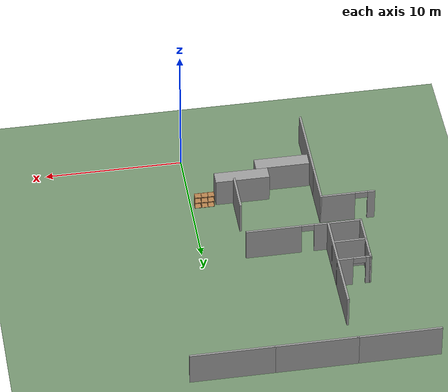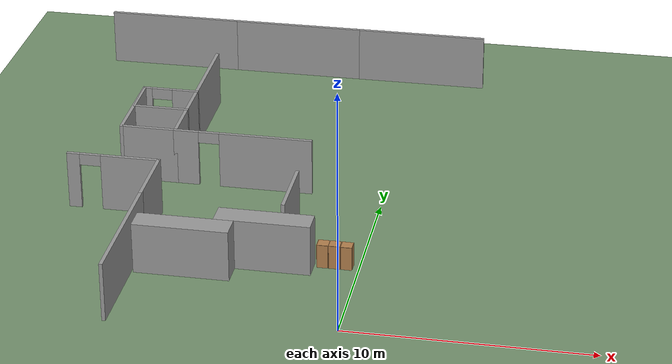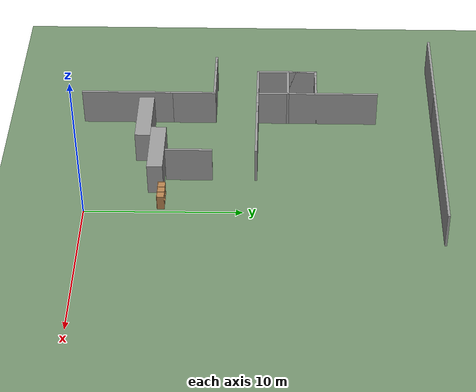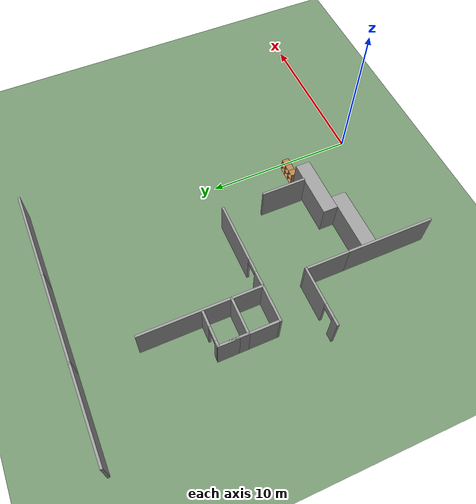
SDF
<sdf version="1.7">
 <world name="default">
  <model name="ground_plane">
   <static>1</static>
   <link name="link">
    <collision name="collision">
     <geometry><plane><normal>0 0 1</normal><size>600 600</size></plane></geometry>
     <surface>
      <contact><collide_bitmask>65535</collide_bitmask></contact>
      <friction><ode><mu>100</mu><mu2>50</mu2></ode></friction>
     </surface>
    </collision>
    <visual name="visual">
     <cast_shadows>0</cast_shadows>
     <geometry><plane><normal>0 0 1</normal><size>100 100</size></plane></geometry>
     <material><ambient>0.45 0.57 0.43 1</ambient><diffuse>0.45 0.57 0.43 1</diffuse></material>
    </visual>
   </link>
  </model>
  <model name="unit_box_clone_clone">
   <pose>-3.79139 4.41905 1.08892 0 0.000118 -0.002216</pose>
   <link name="link">
    <inertial>
     <mass>1</mass>
     <inertia>
      <ixx>0.166667</ixx>
      <ixy>0</ixy>
      <ixz>0</ixz>
      <iyy>0.166667</iyy>
      <iyz>0</iyz>
      <izz>0.166667</izz>
     </inertia>
    </inertial>
    <collision name="collision"><geometry><box><size>3.92499 1 2.1783</size></box></geometry></collision>
    <visual name="visual">
     <geometry><box><size>3.92499 1 2.1783</size></box></geometry>
     <material>
      <script><name>Gazebo/Grey</name><uri>file://media/materials/scripts/gazebo.material</uri></script>
     </material>
    </visual>
   </link>
  </model>
  <model name="unit_box_clone_clone_clone">
   <pose>-6.88429 3.42566 1.08892 0 -0.000118 -0.002201</pose>
   <link name="link">
    <inertial>
     <mass>1</mass>
     <inertia>
      <ixx>0.166667</ixx>
      <ixy>0</ixy>
      <ixz>0</ixz>
      <iyy>0.166667</iyy>
      <iyz>0</iyz>
      <izz>0.166667</izz>
     </inertia>
    </inertial>
    <collision name="collision"><geometry><box><size>3.92499 1 2.1783</size></box></geometry></collision>
    <visual name="visual">
     <geometry><box><size>3.92499 1 2.1783</size></box></geometry>
     <material>
      <script><name>Gazebo/Grey</name><uri>file://media/materials/scripts/gazebo.material</uri></script>
     </material>
    </visual>
   </link>
  </model>
  <model name="myhal_V3_2">
   <link name="Wall_336">
    <pose>0 20.325 0 0 -0 3.14159</pose>
    <visual name="Wall_336_Visual">
     <pose>0 0 1.25 0 -0 0</pose>
     <geometry><box><size>6 0.15 2.5</size></box></geometry>
     <material>
      <script><uri>file://media/materials/scripts/gazebo.material</uri><name>Gazebo/Grey</name></script>
      <ambient>1 1 1 1</ambient>
      <shader type="pixel"/>
     </material>
     <meta><layer>0</layer></meta>
    </visual>
    <collision name="Wall_336_Collision">
     <pose>0 0 1.25 0 -0 0</pose>
     <geometry><box><size>6 0.15 2.5</size></box></geometry>
     <surface>
      <friction>
       <ode><mu>1</mu><mu2>1</mu2><fdir1>0 0 0</fdir1><slip1>0</slip1><slip2>0</slip2></ode>
       <torsional>
        <coefficient>1</coefficient>
        <patch_radius>0</patch_radius>
        <surface_radius>0</surface_radius>
        <use_patch_radius>1</use_patch_radius>
        <ode><slip>0</slip></ode>
       </torsional>
      </friction>
      <bounce><restitution_coefficient>0</restitution_coefficient><threshold>1e+06</threshold></bounce>
      <contact>
       <collide_without_contact>0</collide_without_contact>
       <collide_without_contact_bitmask>1</collide_without_contact_bitmask>
       <collide_bitmask>1</collide_bitmask>
       <ode>
        <soft_cfm>0</soft_cfm>
        <soft_erp>0.2</soft_erp>
        <kp>1e+13</kp>
        <kd>1</kd>
        <max_vel>0.01</max_vel>
        <min_depth>0</min_depth>
       </ode>
       <bullet>
        <split_impulse>1</split_impulse>
        <split_impulse_penetration_threshold>-0.01</split_impulse_penetration_threshold>
        <soft_cfm>0</soft_cfm>
        <soft_erp>0.2</soft_erp>
        <kp>1e+13</kp>
        <kd>1</kd>
       </bullet>
      </contact>
     </surface>
    </collision>
   </link>
   <link name="Wall_337">
    <pose>-5.85 20.325 0 0 -0 3.14159</pose>
    <visual name="Wall_337_Visual">
     <pose>0 0 1.25 0 -0 0</pose>
     <geometry><box><size>6 0.15 2.5</size></box></geometry>
     <material>
      <script><uri>file://media/materials/scripts/gazebo.material</uri><name>Gazebo/Grey</name></script>
      <ambient>1 1 1 1</ambient>
      <shader type="pixel"/>
     </material>
     <meta><layer>0</layer></meta>
    </visual>
    <collision name="Wall_337_Collision">
     <pose>0 0 1.25 0 -0 0</pose>
     <geometry><box><size>6 0.15 2.5</size></box></geometry>
     <surface>
      <friction>
       <ode><mu>1</mu><mu2>1</mu2><fdir1>0 0 0</fdir1><slip1>0</slip1><slip2>0</slip2></ode>
       <torsional>
        <coefficient>1</coefficient>
        <patch_radius>0</patch_radius>
        <surface_radius>0</surface_radius>
        <use_patch_radius>1</use_patch_radius>
        <ode><slip>0</slip></ode>
       </torsional>
      </friction>
      <bounce><restitution_coefficient>0</restitution_coefficient><threshold>1e+06</threshold></bounce>
      <contact>
       <collide_without_contact>0</collide_without_contact>
       <collide_without_contact_bitmask>1</collide_without_contact_bitmask>
       <collide_bitmask>1</collide_bitmask>
       <ode>
        <soft_cfm>0</soft_cfm>
        <soft_erp>0.2</soft_erp>
        <kp>1e+13</kp>
        <kd>1</kd>
        <max_vel>0.01</max_vel>
        <min_depth>0</min_depth>
       </ode>
       <bullet>
        <split_impulse>1</split_impulse>
        <split_impulse_penetration_threshold>-0.01</split_impulse_penetration_threshold>
        <soft_cfm>0</soft_cfm>
        <soft_erp>0.2</soft_erp>
        <kp>1e+13</kp>
        <kd>1</kd>
       </bullet>
      </contact>
     </surface>
    </collision>
   </link>
   <link name="Wall_338">
    <pose>-11.7 20.325 0 0 -0 3.14159</pose>
    <visual name="Wall_338_Visual">
     <pose>0 0 1.25 0 -0 0</pose>
     <geometry><box><size>6 0.15 2.5</size></box></geometry>
     <material>
      <script><uri>file://media/materials/scripts/gazebo.material</uri><name>Gazebo/Grey</name></script>
      <ambient>1 1 1 1</ambient>
      <shader type="pixel"/>
     </material>
     <meta><layer>0</layer></meta>
    </visual>
    <collision name="Wall_338_Collision">
     <pose>0 0 1.25 0 -0 0</pose>
     <geometry><box><size>6 0.15 2.5</size></box></geometry>
     <surface>
      <friction>
       <ode><mu>1</mu><mu2>1</mu2><fdir1>0 0 0</fdir1><slip1>0</slip1><slip2>0</slip2></ode>
       <torsional>
        <coefficient>1</coefficient>
        <patch_radius>0</patch_radius>
        <surface_radius>0</surface_radius>
        <use_patch_radius>1</use_patch_radius>
        <ode><slip>0</slip></ode>
       </torsional>
      </friction>
      <bounce><restitution_coefficient>0</restitution_coefficient><threshold>1e+06</threshold></bounce>
      <contact>
       <collide_without_contact>0</collide_without_contact>
       <collide_without_contact_bitmask>1</collide_without_contact_bitmask>
       <collide_bitmask>1</collide_bitmask>
       <ode>
        <soft_cfm>0</soft_cfm>
        <soft_erp>0.2</soft_erp>
        <kp>1e+13</kp>
        <kd>1</kd>
        <max_vel>0.01</max_vel>
        <min_depth>0</min_depth>
       </ode>
       <bullet>
        <split_impulse>1</split_impulse>
        <split_impulse_penetration_threshold>-0.01</split_impulse_penetration_threshold>
        <soft_cfm>0</soft_cfm>
        <soft_erp>0.2</soft_erp>
        <kp>1e+13</kp>
        <kd>1</kd>
       </bullet>
      </contact>
     </surface>
    </collision>
   </link>
   <link name="Wall_362">
    <pose>-8.775 12.55 0 0 0 -1.5708</pose>
    <visual name="Wall_362_Visual">
     <pose>0 0 1.25 0 -0 0</pose>
     <geometry><box><size>8 0.15 2.5</size></box></geometry>
     <material>
      <script><uri>file://media/materials/scripts/gazebo.material</uri><name>Gazebo/Grey</name></script>
      <ambient>1 1 1 1</ambient>
      <shader type="pixel"/>
     </material>
     <meta><layer>0</layer></meta>
    </visual>
    <collision name="Wall_362_Collision">
     <pose>0 0 1.25 0 -0 0</pose>
     <geometry><box><size>8 0.15 2.5</size></box></geometry>
     <surface>
      <friction>
       <ode><mu>1</mu><mu2>1</mu2><fdir1>0 0 0</fdir1><slip1>0</slip1><slip2>0</slip2></ode>
       <torsional>
        <coefficient>1</coefficient>
        <patch_radius>0</patch_radius>
        <surface_radius>0</surface_radius>
        <use_patch_radius>1</use_patch_radius>
        <ode><slip>0</slip></ode>
       </torsional>
      </friction>
      <bounce><restitution_coefficient>0</restitution_coefficient><threshold>1e+06</threshold></bounce>
      <contact>
       <collide_without_contact>0</collide_without_contact>
       <collide_without_contact_bitmask>1</collide_without_contact_bitmask>
       <collide_bitmask>1</collide_bitmask>
       <ode>
        <soft_cfm>0</soft_cfm>
        <soft_erp>0.2</soft_erp>
        <kp>1e+13</kp>
        <kd>1</kd>
        <max_vel>0.01</max_vel>
        <min_depth>0</min_depth>
       </ode>
       <bullet>
        <split_impulse>1</split_impulse>
        <split_impulse_penetration_threshold>-0.01</split_impulse_penetration_threshold>
        <soft_cfm>0</soft_cfm>
        <soft_erp>0.2</soft_erp>
        <kp>1e+13</kp>
        <kd>1</kd>
       </bullet>
      </contact>
     </surface>
    </collision>
   </link>
   <link name="Wall_366">
    <pose>-9.95 8.625 0 0 -0 3.14159</pose>
    <visual name="Wall_366_Visual">
     <pose>0 0 1.25 0 -0 0</pose>
     <geometry><box><size>2.5 0.15 2.5</size></box></geometry>
     <material>
      <script><uri>file://media/materials/scripts/gazebo.material</uri><name>Gazebo/Grey</name></script>
      <ambient>1 1 1 1</ambient>
      <shader type="pixel"/>
     </material>
     <meta><layer>0</layer></meta>
    </visual>
    <collision name="Wall_366_Collision">
     <pose>0 0 1.25 0 -0 0</pose>
     <geometry><box><size>2.5 0.15 2.5</size></box></geometry>
     <surface>
      <friction>
       <ode><mu>1</mu><mu2>1</mu2><fdir1>0 0 0</fdir1><slip1>0</slip1><slip2>0</slip2></ode>
       <torsional>
        <coefficient>1</coefficient>
        <patch_radius>0</patch_radius>
        <surface_radius>0</surface_radius>
        <use_patch_radius>1</use_patch_radius>
        <ode><slip>0</slip></ode>
       </torsional>
      </friction>
      <bounce><restitution_coefficient>0</restitution_coefficient><threshold>1e+06</threshold></bounce>
      <contact>
       <collide_without_contact>0</collide_without_contact>
       <collide_without_contact_bitmask>1</collide_without_contact_bitmask>
       <collide_bitmask>1</collide_bitmask>
       <ode>
        <soft_cfm>0</soft_cfm>
        <soft_erp>0.2</soft_erp>
        <kp>1e+13</kp>
        <kd>1</kd>
        <max_vel>0.01</max_vel>
        <min_depth>0</min_depth>
       </ode>
       <bullet>
        <split_impulse>1</split_impulse>
        <split_impulse_penetration_threshold>-0.01</split_impulse_penetration_threshold>
        <soft_cfm>0</soft_cfm>
        <soft_erp>0.2</soft_erp>
        <kp>1e+13</kp>
        <kd>1</kd>
       </bullet>
      </contact>
     </surface>
    </collision>
   </link>
   <link name="Wall_367">
    <pose>-11.125 10.55 0 0 -0 1.5708</pose>
    <visual name="Wall_367_Visual">
     <pose>0 0 1.25 0 -0 0</pose>
     <geometry><box><size>4 0.15 2.5</size></box></geometry>
     <material>
      <script><uri>file://media/materials/scripts/gazebo.material</uri><name>Gazebo/Grey</name></script>
      <ambient>1 1 1 1</ambient>
      <shader type="pixel"/>
     </material>
     <meta><layer>0</layer></meta>
    </visual>
    <collision name="Wall_367_Collision">
     <pose>0 0 1.25 0 -0 0</pose>
     <geometry><box><size>4 0.15 2.5</size></box></geometry>
     <surface>
      <friction>
       <ode><mu>1</mu><mu2>1</mu2><fdir1>0 0 0</fdir1><slip1>0</slip1><slip2>0</slip2></ode>
       <torsional>
        <coefficient>1</coefficient>
        <patch_radius>0</patch_radius>
        <surface_radius>0</surface_radius>
        <use_patch_radius>1</use_patch_radius>
        <ode><slip>0</slip></ode>
       </torsional>
      </friction>
      <bounce><restitution_coefficient>0</restitution_coefficient><threshold>1e+06</threshold></bounce>
      <contact>
       <collide_without_contact>0</collide_without_contact>
       <collide_without_contact_bitmask>1</collide_without_contact_bitmask>
       <collide_bitmask>1</collide_bitmask>
       <ode>
        <soft_cfm>0</soft_cfm>
        <soft_erp>0.2</soft_erp>
        <kp>1e+13</kp>
        <kd>1</kd>
        <max_vel>0.01</max_vel>
        <min_depth>0</min_depth>
       </ode>
       <bullet>
        <split_impulse>1</split_impulse>
        <split_impulse_penetration_threshold>-0.01</split_impulse_penetration_threshold>
        <soft_cfm>0</soft_cfm>
        <soft_erp>0.2</soft_erp>
        <kp>1e+13</kp>
        <kd>1</kd>
       </bullet>
      </contact>
     </surface>
    </collision>
   </link>
   <link name="Wall_368">
    <pose>-9.95 12.475 0 0 -0 0</pose>
    <visual name="Wall_368_Visual_0">
     <pose>-1.03753 0 1.25 0 -0 0</pose>
     <geometry><box><size>0.424942 0.15 2.5</size></box></geometry>
     <material>
      <script><uri>file://media/materials/scripts/gazebo.material</uri><name>Gazebo/Grey</name></script>
      <ambient>1 1 1 1</ambient>
      <shader type="pixel"/>
     </material>
     <meta><layer>0</layer></meta>
    </visual>
    <visual name="Wall_368_Visual_1">
     <pose>0.662471 0 1.25 0 -0 0</pose>
     <geometry><box><size>1.17506 0.15 2.5</size></box></geometry>
     <material>
      <script><uri>file://media/materials/scripts/gazebo.material</uri><name>Gazebo/Grey</name></script>
      <ambient>1 1 1 1</ambient>
      <shader type="pixel"/>
     </material>
     <meta><layer>0</layer></meta>
    </visual>
    <visual name="Wall_368_Visual_2">
     <pose>-0.375058 0 2.25 0 -0 0</pose>
     <geometry><box><size>0.9 0.15 0.5</size></box></geometry>
     <material>
      <script><uri>file://media/materials/scripts/gazebo.material</uri><name>Gazebo/Grey</name></script>
      <ambient>1 1 1 1</ambient>
      <shader type="pixel"/>
     </material>
     <meta><layer>0</layer></meta>
    </visual>
    <collision name="Wall_368_Collision_0">
     <pose>-1.03753 0 1.25 0 -0 0</pose>
     <geometry><box><size>0.424942 0.15 2.5</size></box></geometry>
     <surface>
      <friction>
       <ode><mu>1</mu><mu2>1</mu2><fdir1>0 0 0</fdir1><slip1>0</slip1><slip2>0</slip2></ode>
       <torsional>
        <coefficient>1</coefficient>
        <patch_radius>0</patch_radius>
        <surface_radius>0</surface_radius>
        <use_patch_radius>1</use_patch_radius>
        <ode><slip>0</slip></ode>
       </torsional>
      </friction>
      <bounce><restitution_coefficient>0</restitution_coefficient><threshold>1e+06</threshold></bounce>
      <contact>
       <collide_without_contact>0</collide_without_contact>
       <collide_without_contact_bitmask>1</collide_without_contact_bitmask>
       <collide_bitmask>1</collide_bitmask>
       <ode>
        <soft_cfm>0</soft_cfm>
        <soft_erp>0.2</soft_erp>
        <kp>1e+13</kp>
        <kd>1</kd>
        <max_vel>0.01</max_vel>
        <min_depth>0</min_depth>
       </ode>
       <bullet>
        <split_impulse>1</split_impulse>
        <split_impulse_penetration_threshold>-0.01</split_impulse_penetration_threshold>
        <soft_cfm>0</soft_cfm>
        <soft_erp>0.2</soft_erp>
        <kp>1e+13</kp>
        <kd>1</kd>
       </bullet>
      </contact>
     </surface>
    </collision>
    <collision name="Wall_368_Collision_1">
     <pose>0.662471 0 1.25 0 -0 0</pose>
     <geometry><box><size>1.17506 0.15 2.5</size></box></geometry>
     <surface>
      <friction>
       <ode><mu>1</mu><mu2>1</mu2><fdir1>0 0 0</fdir1><slip1>0</slip1><slip2>0</slip2></ode>
       <torsional>
        <coefficient>1</coefficient>
        <patch_radius>0</patch_radius>
        <surface_radius>0</surface_radius>
        <use_patch_radius>1</use_patch_radius>
        <ode><slip>0</slip></ode>
       </torsional>
      </friction>
      <bounce><restitution_coefficient>0</restitution_coefficient><threshold>1e+06</threshold></bounce>
      <contact>
       <collide_without_contact>0</collide_without_contact>
       <collide_without_contact_bitmask>1</collide_without_contact_bitmask>
       <collide_bitmask>1</collide_bitmask>
       <ode>
        <soft_cfm>0</soft_cfm>
        <soft_erp>0.2</soft_erp>
        <kp>1e+13</kp>
        <kd>1</kd>
        <max_vel>0.01</max_vel>
        <min_depth>0</min_depth>
       </ode>
       <bullet>
        <split_impulse>1</split_impulse>
        <split_impulse_penetration_threshold>-0.01</split_impulse_penetration_threshold>
        <soft_cfm>0</soft_cfm>
        <soft_erp>0.2</soft_erp>
        <kp>1e+13</kp>
        <kd>1</kd>
       </bullet>
      </contact>
     </surface>
    </collision>
    <collision name="Wall_368_Collision_2">
     <pose>-0.375058 0 2.25 0 -0 0</pose>
     <geometry><box><size>0.9 0.15 0.5</size></box></geometry>
     <surface>
      <friction>
       <ode><mu>1</mu><mu2>1</mu2><fdir1>0 0 0</fdir1><slip1>0</slip1><slip2>0</slip2></ode>
       <torsional>
        <coefficient>1</coefficient>
        <patch_radius>0</patch_radius>
        <surface_radius>0</surface_radius>
        <use_patch_radius>1</use_patch_radius>
        <ode><slip>0</slip></ode>
       </torsional>
      </friction>
      <bounce><restitution_coefficient>0</restitution_coefficient><threshold>1e+06</threshold></bounce>
      <contact>
       <collide_without_contact>0</collide_without_contact>
       <collide_without_contact_bitmask>1</collide_without_contact_bitmask>
       <collide_bitmask>1</collide_bitmask>
       <ode>
        <soft_cfm>0</soft_cfm>
        <soft_erp>0.2</soft_erp>
        <kp>1e+13</kp>
        <kd>1</kd>
        <max_vel>0.01</max_vel>
        <min_depth>0</min_depth>
       </ode>
       <bullet>
        <split_impulse>1</split_impulse>
        <split_impulse_penetration_threshold>-0.01</split_impulse_penetration_threshold>
        <soft_cfm>0</soft_cfm>
        <soft_erp>0.2</soft_erp>
        <kp>1e+13</kp>
        <kd>1</kd>
       </bullet>
      </contact>
     </surface>
    </collision>
   </link>
   <link name="Wall_370">
    <pose>-5.85 8.625 0 0 -0 0</pose>
    <visual name="Wall_370_Visual_0">
     <pose>-2.45569 0 1.25 0 -0 0</pose>
     <geometry><box><size>1.08861 0.15 2.5</size></box></geometry>
     <material>
      <script><uri>file://media/materials/scripts/gazebo.material</uri><name>Gazebo/Grey</name></script>
      <ambient>1 1 1 1</ambient>
      <shader type="pixel"/>
     </material>
     <meta><layer>0</layer></meta>
    </visual>
    <visual name="Wall_370_Visual_1">
     <pose>0.994306 0 1.25 0 -0 0</pose>
     <geometry><box><size>4.01139 0.15 2.5</size></box></geometry>
     <material>
      <script><uri>file://media/materials/scripts/gazebo.material</uri><name>Gazebo/Grey</name></script>
      <ambient>1 1 1 1</ambient>
      <shader type="pixel"/>
     </material>
     <meta><layer>0</layer></meta>
    </visual>
    <visual name="Wall_370_Visual_2">
     <pose>-1.46139 0 2.25 0 -0 0</pose>
     <geometry><box><size>0.9 0.15 0.5</size></box></geometry>
     <material>
      <script><uri>file://media/materials/scripts/gazebo.material</uri><name>Gazebo/Grey</name></script>
      <ambient>1 1 1 1</ambient>
      <shader type="pixel"/>
     </material>
     <meta><layer>0</layer></meta>
    </visual>
    <collision name="Wall_370_Collision_0">
     <pose>-2.45569 0 1.25 0 -0 0</pose>
     <geometry><box><size>1.08861 0.15 2.5</size></box></geometry>
     <surface>
      <friction>
       <ode><mu>1</mu><mu2>1</mu2><fdir1>0 0 0</fdir1><slip1>0</slip1><slip2>0</slip2></ode>
       <torsional>
        <coefficient>1</coefficient>
        <patch_radius>0</patch_radius>
        <surface_radius>0</surface_radius>
        <use_patch_radius>1</use_patch_radius>
        <ode><slip>0</slip></ode>
       </torsional>
      </friction>
      <bounce><restitution_coefficient>0</restitution_coefficient><threshold>1e+06</threshold></bounce>
      <contact>
       <collide_without_contact>0</collide_without_contact>
       <collide_without_contact_bitmask>1</collide_without_contact_bitmask>
       <collide_bitmask>1</collide_bitmask>
       <ode>
        <soft_cfm>0</soft_cfm>
        <soft_erp>0.2</soft_erp>
        <kp>1e+13</kp>
        <kd>1</kd>
        <max_vel>0.01</max_vel>
        <min_depth>0</min_depth>
       </ode>
       <bullet>
        <split_impulse>1</split_impulse>
        <split_impulse_penetration_threshold>-0.01</split_impulse_penetration_threshold>
        <soft_cfm>0</soft_cfm>
        <soft_erp>0.2</soft_erp>
        <kp>1e+13</kp>
        <kd>1</kd>
       </bullet>
      </contact>
     </surface>
    </collision>
    <collision name="Wall_370_Collision_1">
     <pose>0.994306 0 1.25 0 -0 0</pose>
     <geometry><box><size>4.01139 0.15 2.5</size></box></geometry>
     <surface>
      <friction>
       <ode><mu>1</mu><mu2>1</mu2><fdir1>0 0 0</fdir1><slip1>0</slip1><slip2>0</slip2></ode>
       <torsional>
        <coefficient>1</coefficient>
        <patch_radius>0</patch_radius>
        <surface_radius>0</surface_radius>
        <use_patch_radius>1</use_patch_radius>
        <ode><slip>0</slip></ode>
       </torsional>
      </friction>
      <bounce><restitution_coefficient>0</restitution_coefficient><threshold>1e+06</threshold></bounce>
      <contact>
       <collide_without_contact>0</collide_without_contact>
       <collide_without_contact_bitmask>1</collide_without_contact_bitmask>
       <collide_bitmask>1</collide_bitmask>
       <ode>
        <soft_cfm>0</soft_cfm>
        <soft_erp>0.2</soft_erp>
        <kp>1e+13</kp>
        <kd>1</kd>
        <max_vel>0.01</max_vel>
        <min_depth>0</min_depth>
       </ode>
       <bullet>
        <split_impulse>1</split_impulse>
        <split_impulse_penetration_threshold>-0.01</split_impulse_penetration_threshold>
        <soft_cfm>0</soft_cfm>
        <soft_erp>0.2</soft_erp>
        <kp>1e+13</kp>
        <kd>1</kd>
       </bullet>
      </contact>
     </surface>
    </collision>
    <collision name="Wall_370_Collision_2">
     <pose>-1.46139 0 2.25 0 -0 0</pose>
     <geometry><box><size>0.9 0.15 0.5</size></box></geometry>
     <surface>
      <friction>
       <ode><mu>1</mu><mu2>1</mu2><fdir1>0 0 0</fdir1><slip1>0</slip1><slip2>0</slip2></ode>
       <torsional>
        <coefficient>1</coefficient>
        <patch_radius>0</patch_radius>
        <surface_radius>0</surface_radius>
        <use_patch_radius>1</use_patch_radius>
        <ode><slip>0</slip></ode>
       </torsional>
      </friction>
      <bounce><restitution_coefficient>0</restitution_coefficient><threshold>1e+06</threshold></bounce>
      <contact>
       <collide_without_contact>0</collide_without_contact>
       <collide_without_contact_bitmask>1</collide_without_contact_bitmask>
       <collide_bitmask>1</collide_bitmask>
       <ode>
        <soft_cfm>0</soft_cfm>
        <soft_erp>0.2</soft_erp>
        <kp>1e+13</kp>
        <kd>1</kd>
        <max_vel>0.01</max_vel>
        <min_depth>0</min_depth>
       </ode>
       <bullet>
        <split_impulse>1</split_impulse>
        <split_impulse_penetration_threshold>-0.01</split_impulse_penetration_threshold>
        <soft_cfm>0</soft_cfm>
        <soft_erp>0.2</soft_erp>
        <kp>1e+13</kp>
        <kd>1</kd>
       </bullet>
      </contact>
     </surface>
    </collision>
   </link>
   <link name="Wall_439">
    <pose>-10.7 5.775 0 0 -0 3.14159</pose>
    <visual name="Wall_439_Visual_0">
     <pose>-0.724975 0 1.25 0 -0 0</pose>
     <geometry><box><size>2.55005 0.15 2.5</size></box></geometry>
     <material>
      <script><uri>file://media/materials/scripts/gazebo.material</uri><name>Gazebo/Grey</name></script>
      <ambient>1 1 1 1</ambient>
      <shader type="pixel"/>
     </material>
     <meta><layer>0</layer></meta>
    </visual>
    <visual name="Wall_439_Visual_1">
     <pose>1.72503 0 1.25 0 -0 0</pose>
     <geometry><box><size>0.549949 0.15 2.5</size></box></geometry>
     <material>
      <script><uri>file://media/materials/scripts/gazebo.material</uri><name>Gazebo/Grey</name></script>
      <ambient>1 1 1 1</ambient>
      <shader type="pixel"/>
     </material>
     <meta><layer>0</layer></meta>
    </visual>
    <visual name="Wall_439_Visual_2">
     <pose>1.00005 0 2.25 0 -0 0</pose>
     <geometry><box><size>0.9 0.15 0.5</size></box></geometry>
     <material>
      <script><uri>file://media/materials/scripts/gazebo.material</uri><name>Gazebo/Grey</name></script>
      <ambient>1 1 1 1</ambient>
      <shader type="pixel"/>
     </material>
     <meta><layer>0</layer></meta>
    </visual>
    <collision name="Wall_439_Collision_0">
     <pose>-0.724975 0 1.25 0 -0 0</pose>
     <geometry><box><size>2.55005 0.15 2.5</size></box></geometry>
     <surface>
      <friction>
       <ode><mu>1</mu><mu2>1</mu2><fdir1>0 0 0</fdir1><slip1>0</slip1><slip2>0</slip2></ode>
       <torsional>
        <coefficient>1</coefficient>
        <patch_radius>0</patch_radius>
        <surface_radius>0</surface_radius>
        <use_patch_radius>1</use_patch_radius>
        <ode><slip>0</slip></ode>
       </torsional>
      </friction>
      <bounce><restitution_coefficient>0</restitution_coefficient><threshold>1e+06</threshold></bounce>
      <contact>
       <collide_without_contact>0</collide_without_contact>
       <collide_without_contact_bitmask>1</collide_without_contact_bitmask>
       <collide_bitmask>1</collide_bitmask>
       <ode>
        <soft_cfm>0</soft_cfm>
        <soft_erp>0.2</soft_erp>
        <kp>1e+13</kp>
        <kd>1</kd>
        <max_vel>0.01</max_vel>
        <min_depth>0</min_depth>
       </ode>
       <bullet>
        <split_impulse>1</split_impulse>
        <split_impulse_penetration_threshold>-0.01</split_impulse_penetration_threshold>
        <soft_cfm>0</soft_cfm>
        <soft_erp>0.2</soft_erp>
        <kp>1e+13</kp>
        <kd>1</kd>
       </bullet>
      </contact>
     </surface>
    </collision>
    <collision name="Wall_439_Collision_2">
     <pose>1.00005 0 2.25 0 -0 0</pose>
     <geometry><box><size>0.9 0.15 0.5</size></box></geometry>
     <surface>
      <friction>
       <ode><mu>1</mu><mu2>1</mu2><fdir1>0 0 0</fdir1><slip1>0</slip1><slip2>0</slip2></ode>
       <torsional>
        <coefficient>1</coefficient>
        <patch_radius>0</patch_radius>
        <surface_radius>0</surface_radius>
        <use_patch_radius>1</use_patch_radius>
        <ode><slip>0</slip></ode>
       </torsional>
      </friction>
      <bounce><restitution_coefficient>0</restitution_coefficient><threshold>1e+06</threshold></bounce>
      <contact>
       <collide_without_contact>0</collide_without_contact>
       <collide_without_contact_bitmask>1</collide_without_contact_bitmask>
       <collide_bitmask>1</collide_bitmask>
       <ode>
        <soft_cfm>0</soft_cfm>
        <soft_erp>0.2</soft_erp>
        <kp>1e+13</kp>
        <kd>1</kd>
        <max_vel>0.01</max_vel>
        <min_depth>0</min_depth>
       </ode>
       <bullet>
        <split_impulse>1</split_impulse>
        <split_impulse_penetration_threshold>-0.01</split_impulse_penetration_threshold>
        <soft_cfm>0</soft_cfm>
        <soft_erp>0.2</soft_erp>
        <kp>1e+13</kp>
        <kd>1</kd>
       </bullet>
      </contact>
     </surface>
    </collision>
    <collision name="Wall_439_Collision_1">
     <pose>1.72503 0 1.25 0 -0 0</pose>
     <geometry><box><size>0.549949 0.15 2.5</size></box></geometry>
     <surface>
      <friction>
       <ode><mu>1</mu><mu2>1</mu2><fdir1>0 0 0</fdir1><slip1>0</slip1><slip2>0</slip2></ode>
       <torsional>
        <coefficient>1</coefficient>
        <patch_radius>0</patch_radius>
        <surface_radius>0</surface_radius>
        <use_patch_radius>1</use_patch_radius>
        <ode><slip>0</slip></ode>
       </torsional>
      </friction>
      <bounce><restitution_coefficient>0</restitution_coefficient><threshold>1e+06</threshold></bounce>
      <contact>
       <collide_without_contact>0</collide_without_contact>
       <collide_without_contact_bitmask>1</collide_without_contact_bitmask>
       <collide_bitmask>1</collide_bitmask>
       <ode>
        <soft_cfm>0</soft_cfm>
        <soft_erp>0.2</soft_erp>
        <kp>1e+13</kp>
        <kd>1</kd>
        <max_vel>0.01</max_vel>
        <min_depth>0</min_depth>
       </ode>
       <bullet>
        <split_impulse>1</split_impulse>
        <split_impulse_penetration_threshold>-0.01</split_impulse_penetration_threshold>
        <soft_cfm>0</soft_cfm>
        <soft_erp>0.2</soft_erp>
        <kp>1e+13</kp>
        <kd>1</kd>
       </bullet>
      </contact>
     </surface>
    </collision>
   </link>
   <link name="Wall_447">
    <pose>-8.775 4.35 0 0 0 -1.5708</pose>
    <visual name="Wall_447_Visual">
     <pose>0 0 1.25 0 -0 0</pose>
     <geometry><box><size>3 0.15 2.5</size></box></geometry>
     <material>
      <script><uri>file://media/materials/scripts/gazebo.material</uri><name>Gazebo/Grey</name></script>
      <ambient>1 1 1 1</ambient>
      <shader type="pixel"/>
     </material>
     <meta><layer>0</layer></meta>
    </visual>
    <collision name="Wall_447_Collision">
     <pose>0 0 1.25 0 -0 0</pose>
     <geometry><box><size>3 0.15 2.5</size></box></geometry>
     <surface>
      <friction>
       <ode><mu>1</mu><mu2>1</mu2><fdir1>0 0 0</fdir1><slip1>0</slip1><slip2>0</slip2></ode>
       <torsional>
        <coefficient>1</coefficient>
        <patch_radius>0</patch_radius>
        <surface_radius>0</surface_radius>
        <use_patch_radius>1</use_patch_radius>
        <ode><slip>0</slip></ode>
       </torsional>
      </friction>
      <bounce><restitution_coefficient>0</restitution_coefficient><threshold>1e+06</threshold></bounce>
      <contact>
       <collide_without_contact>0</collide_without_contact>
       <collide_without_contact_bitmask>1</collide_without_contact_bitmask>
       <collide_bitmask>1</collide_bitmask>
       <ode>
        <soft_cfm>0</soft_cfm>
        <soft_erp>0.2</soft_erp>
        <kp>1e+13</kp>
        <kd>1</kd>
        <max_vel>0.01</max_vel>
        <min_depth>0</min_depth>
       </ode>
       <bullet>
        <split_impulse>1</split_impulse>
        <split_impulse_penetration_threshold>-0.01</split_impulse_penetration_threshold>
        <soft_cfm>0</soft_cfm>
        <soft_erp>0.2</soft_erp>
        <kp>1e+13</kp>
        <kd>1</kd>
       </bullet>
      </contact>
     </surface>
    </collision>
   </link>
   <link name="Wall_448">
    <pose>-8.775 0 0 0 0 -1.5708</pose>
    <visual name="Wall_448_Visual">
     <pose>0 0 1.25 0 -0 0</pose>
     <geometry><box><size>6 0.15 2.5</size></box></geometry>
     <material>
      <script><uri>file://media/materials/scripts/gazebo.material</uri><name>Gazebo/Grey</name></script>
      <ambient>1 1 1 1</ambient>
      <shader type="pixel"/>
     </material>
     <meta><layer>0</layer></meta>
    </visual>
    <collision name="Wall_448_Collision">
     <pose>0 0 1.25 0 -0 0</pose>
     <geometry><box><size>6 0.15 2.5</size></box></geometry>
     <surface>
      <friction>
       <ode><mu>1</mu><mu2>1</mu2><fdir1>0 0 0</fdir1><slip1>0</slip1><slip2>0</slip2></ode>
       <torsional>
        <coefficient>1</coefficient>
        <patch_radius>0</patch_radius>
        <surface_radius>0</surface_radius>
        <use_patch_radius>1</use_patch_radius>
        <ode><slip>0</slip></ode>
       </torsional>
      </friction>
      <bounce><restitution_coefficient>0</restitution_coefficient><threshold>1e+06</threshold></bounce>
      <contact>
       <collide_without_contact>0</collide_without_contact>
       <collide_without_contact_bitmask>1</collide_without_contact_bitmask>
       <collide_bitmask>1</collide_bitmask>
       <ode>
        <soft_cfm>0</soft_cfm>
        <soft_erp>0.2</soft_erp>
        <kp>1e+13</kp>
        <kd>1</kd>
        <max_vel>0.01</max_vel>
        <min_depth>0</min_depth>
       </ode>
       <bullet>
        <split_impulse>1</split_impulse>
        <split_impulse_penetration_threshold>-0.01</split_impulse_penetration_threshold>
        <soft_cfm>0</soft_cfm>
        <soft_erp>0.2</soft_erp>
        <kp>1e+13</kp>
        <kd>1</kd>
       </bullet>
      </contact>
     </surface>
    </collision>
   </link>
   <link name="Wall_501">
    <pose>-2.925 4.35 0 0 0 -1.5708</pose>
    <visual name="Wall_501_Visual">
     <pose>0 0 1.25 0 -0 0</pose>
     <geometry><box><size>3 0.15 2.5</size></box></geometry>
     <material>
      <script><uri>file://media/materials/scripts/gazebo.material</uri><name>Gazebo/Grey</name></script>
      <ambient>1 1 1 1</ambient>
      <shader type="pixel"/>
     </material>
     <meta><layer>0</layer></meta>
    </visual>
    <collision name="Wall_501_Collision">
     <pose>0 0 1.25 0 -0 0</pose>
     <geometry><box><size>3 0.15 2.5</size></box></geometry>
     <surface>
      <friction>
       <ode><mu>1</mu><mu2>1</mu2><fdir1>0 0 0</fdir1><slip1>0</slip1><slip2>0</slip2></ode>
       <torsional>
        <coefficient>1</coefficient>
        <patch_radius>0</patch_radius>
        <surface_radius>0</surface_radius>
        <use_patch_radius>1</use_patch_radius>
        <ode><slip>0</slip></ode>
       </torsional>
      </friction>
      <bounce><restitution_coefficient>0</restitution_coefficient><threshold>1e+06</threshold></bounce>
      <contact>
       <collide_without_contact>0</collide_without_contact>
       <collide_without_contact_bitmask>1</collide_without_contact_bitmask>
       <collide_bitmask>1</collide_bitmask>
       <ode>
        <soft_cfm>0</soft_cfm>
        <soft_erp>0.2</soft_erp>
        <kp>1e+13</kp>
        <kd>1</kd>
        <max_vel>0.01</max_vel>
        <min_depth>0</min_depth>
       </ode>
       <bullet>
        <split_impulse>1</split_impulse>
        <split_impulse_penetration_threshold>-0.01</split_impulse_penetration_threshold>
        <soft_cfm>0</soft_cfm>
        <soft_erp>0.2</soft_erp>
        <kp>1e+13</kp>
        <kd>1</kd>
       </bullet>
      </contact>
     </surface>
    </collision>
   </link>
   <link name="Wall_583">
    <pose>-11.125 11.55 0 0 0 -1.5708</pose>
    <visual name="Wall_583_Visual">
     <pose>0 0 1.25 0 -0 0</pose>
     <geometry><box><size>2 0.15 2.5</size></box></geometry>
     <material>
      <script><uri>file://media/materials/scripts/gazebo.material</uri><name>Gazebo/Grey</name></script>
      <ambient>1 1 1 1</ambient>
      <shader type="pixel"/>
     </material>
     <meta><layer>0</layer></meta>
    </visual>
    <collision name="Wall_583_Collision">
     <pose>0 0 1.25 0 -0 0</pose>
     <geometry><box><size>2 0.15 2.5</size></box></geometry>
     <surface>
      <friction>
       <ode><mu>1</mu><mu2>1</mu2><fdir1>0 0 0</fdir1><slip1>0</slip1><slip2>0</slip2></ode>
       <torsional>
        <coefficient>1</coefficient>
        <patch_radius>0</patch_radius>
        <surface_radius>0</surface_radius>
        <use_patch_radius>1</use_patch_radius>
        <ode><slip>0</slip></ode>
       </torsional>
      </friction>
      <bounce><restitution_coefficient>0</restitution_coefficient><threshold>1e+06</threshold></bounce>
      <contact>
       <collide_without_contact>0</collide_without_contact>
       <collide_without_contact_bitmask>1</collide_without_contact_bitmask>
       <collide_bitmask>1</collide_bitmask>
       <ode>
        <soft_cfm>0</soft_cfm>
        <soft_erp>0.2</soft_erp>
        <kp>1e+13</kp>
        <kd>1</kd>
        <max_vel>0.01</max_vel>
        <min_depth>0</min_depth>
       </ode>
       <bullet>
        <split_impulse>1</split_impulse>
        <split_impulse_penetration_threshold>-0.01</split_impulse_penetration_threshold>
        <soft_cfm>0</soft_cfm>
        <soft_erp>0.2</soft_erp>
        <kp>1e+13</kp>
        <kd>1</kd>
       </bullet>
      </contact>
     </surface>
    </collision>
   </link>
   <link name="Wall_584">
    <pose>-9.95 10.625 0 0 -0 0</pose>
    <visual name="Wall_584_Visual">
     <pose>0 0 1.25 0 -0 0</pose>
     <geometry><box><size>2.5 0.15 2.5</size></box></geometry>
     <material>
      <script><uri>file://media/materials/scripts/gazebo.material</uri><name>Gazebo/Grey</name></script>
      <ambient>1 1 1 1</ambient>
      <shader type="pixel"/>
     </material>
     <meta><layer>0</layer></meta>
    </visual>
    <collision name="Wall_584_Collision">
     <pose>0 0 1.25 0 -0 0</pose>
     <geometry><box><size>2.5 0.15 2.5</size></box></geometry>
     <surface>
      <friction>
       <ode><mu>1</mu><mu2>1</mu2><fdir1>0 0 0</fdir1><slip1>0</slip1><slip2>0</slip2></ode>
       <torsional>
        <coefficient>1</coefficient>
        <patch_radius>0</patch_radius>
        <surface_radius>0</surface_radius>
        <use_patch_radius>1</use_patch_radius>
        <ode><slip>0</slip></ode>
       </torsional>
      </friction>
      <bounce><restitution_coefficient>0</restitution_coefficient><threshold>1e+06</threshold></bounce>
      <contact>
       <collide_without_contact>0</collide_without_contact>
       <collide_without_contact_bitmask>1</collide_without_contact_bitmask>
       <collide_bitmask>1</collide_bitmask>
       <ode>
        <soft_cfm>0</soft_cfm>
        <soft_erp>0.2</soft_erp>
        <kp>1e+13</kp>
        <kd>1</kd>
        <max_vel>0.01</max_vel>
        <min_depth>0</min_depth>
       </ode>
       <bullet>
        <split_impulse>1</split_impulse>
        <split_impulse_penetration_threshold>-0.01</split_impulse_penetration_threshold>
        <soft_cfm>0</soft_cfm>
        <soft_erp>0.2</soft_erp>
        <kp>1e+13</kp>
        <kd>1</kd>
       </bullet>
      </contact>
     </surface>
    </collision>
   </link>
   <model name="cabinet">
    <static>1</static>
    <link name="cabinet_bottom_plate">
     <inertial>
      <pose>0 0 -1 0 -0 0</pose>
      <inertia><ixx>2.05</ixx><ixy>0</ixy><ixz>0</ixz><iyy>2.05</iyy><iyz>0</iyz><izz>2.05</izz></inertia>
      <mass>25</mass>
     </inertial>
     <collision name="cabinet_bottom_plate_geom">
      <pose>0 0 0.01 0 -0 0</pose>
      <geometry><box><size>0.45 0.45 0.02</size></box></geometry>
     </collision>
     <visual name="cabinet_bottom_plate_geom_visual">
      <pose>0 0 0.01 0 -0 0</pose>
      <geometry><box><size>0.45 0.45 0.02</size></box></geometry>
      <material>
       <script><uri>file://media/materials/scripts/gazebo.material</uri><name>Gazebo/Wood</name></script>
      </material>
     </visual>
     <collision name="cabinet_bottom_plate_geom_cabinet_back_plate">
      <pose>0.235 0 0.51 0 -0 0</pose>
      <geometry><box><size>0.02 0.45 1.02</size></box></geometry>
     </collision>
     <visual name="cabinet_bottom_plate_geom_cabinet_back_plate_visual">
      <pose>0.235 0 0.51 0 -0 0</pose>
      <geometry><box><size>0.02 0.45 1.02</size></box></geometry>
      <material>
       <script><uri>file://media/materials/scripts/gazebo.material</uri><name>Gazebo/Wood</name></script>
      </material>
     </visual>
     <collision name="cabinet_bottom_plate_geom_cabinet_left_plate">
      <pose>0 0.235 0.51 0 -0 0</pose>
      <geometry><box><size>0.45 0.02 1.02</size></box></geometry>
     </collision>
     <visual name="cabinet_bottom_plate_geom_cabinet_left_plate_visual">
      <pose>0 0.235 0.51 0 -0 0</pose>
      <geometry><box><size>0.45 0.02 1.02</size></box></geometry>
      <material>
       <script><uri>file://media/materials/scripts/gazebo.material</uri><name>Gazebo/Wood</name></script>
      </material>
     </visual>
     <collision name="cabinet_bottom_plate_geom_cabinet_middle_plate">
      <pose>0 0 0.51 0 -0 0</pose>
      <geometry><box><size>0.45 0.45 0.02</size></box></geometry>
     </collision>
     <visual name="cabinet_bottom_plate_geom_cabinet_middle_plate_visual">
      <pose>0 0 0.51 0 -0 0</pose>
      <geometry><box><size>0.45 0.45 0.02</size></box></geometry>
      <material>
       <script><uri>file://media/materials/scripts/gazebo.material</uri><name>Gazebo/Wood</name></script>
      </material>
     </visual>
     <collision name="cabinet_bottom_plate_geom_cabinet_right_plate">
      <pose>0 -0.235 0.51 0 -0 0</pose>
      <geometry><box><size>0.45 0.02 1.02</size></box></geometry>
     </collision>
     <visual name="cabinet_bottom_plate_geom_cabinet_right_plate_visual">
      <pose>0 -0.235 0.51 0 -0 0</pose>
      <geometry><box><size>0.45 0.02 1.02</size></box></geometry>
      <material>
       <script><uri>file://media/materials/scripts/gazebo.material</uri><name>Gazebo/Wood</name></script>
      </material>
     </visual>
     <collision name="cabinet_bottom_plate_geom_cabinet_top_plate">
      <pose>0 0 1.01 0 -0 0</pose>
      <geometry><box><size>0.45 0.45 0.02</size></box></geometry>
     </collision>
     <visual name="cabinet_bottom_plate_geom_cabinet_top_plate_visual">
      <pose>0 0 1.01 0 -0 0</pose>
      <geometry><box><size>0.45 0.45 0.02</size></box></geometry>
      <material>
       <script><uri>file://media/materials/scripts/gazebo.material</uri><name>Gazebo/Wood</name></script>
      </material>
     </visual>
    </link>
    <pose>-0.29185 2.70454 0 0 0 -1.58197</pose>
   </model>
   <model name="cabinet_clone_1">
    <static>1</static>
    <link name="cabinet_bottom_plate">
     <inertial>
      <pose>0 0 -1 0 -0 0</pose>
      <inertia><ixx>2.05</ixx><ixy>0</ixy><ixz>0</ixz><iyy>2.05</iyy><iyz>0</iyz><izz>2.05</izz></inertia>
      <mass>25</mass>
     </inertial>
     <collision name="cabinet_bottom_plate_geom">
      <pose>0 0 0.01 0 -0 0</pose>
      <geometry><box><size>0.45 0.45 0.02</size></box></geometry>
     </collision>
     <visual name="cabinet_bottom_plate_geom_visual">
      <pose>0 0 0.01 0 -0 0</pose>
      <geometry><box><size>0.45 0.45 0.02</size></box></geometry>
      <material>
       <script><uri>file://media/materials/scripts/gazebo.material</uri><name>Gazebo/Wood</name></script>
      </material>
     </visual>
     <collision name="cabinet_bottom_plate_geom_cabinet_back_plate">
      <pose>0.235 0 0.51 0 -0 0</pose>
      <geometry><box><size>0.02 0.45 1.02</size></box></geometry>
     </collision>
     <visual name="cabinet_bottom_plate_geom_cabinet_back_plate_visual">
      <pose>0.235 0 0.51 0 -0 0</pose>
      <geometry><box><size>0.02 0.45 1.02</size></box></geometry>
      <material>
       <script><uri>file://media/materials/scripts/gazebo.material</uri><name>Gazebo/Wood</name></script>
      </material>
     </visual>
     <collision name="cabinet_bottom_plate_geom_cabinet_left_plate">
      <pose>0 0.235 0.51 0 -0 0</pose>
      <geometry><box><size>0.45 0.02 1.02</size></box></geometry>
     </collision>
     <visual name="cabinet_bottom_plate_geom_cabinet_left_plate_visual">
      <pose>0 0.235 0.51 0 -0 0</pose>
      <geometry><box><size>0.45 0.02 1.02</size></box></geometry>
      <material>
       <script><uri>file://media/materials/scripts/gazebo.material</uri><name>Gazebo/Wood</name></script>
      </material>
     </visual>
     <collision name="cabinet_bottom_plate_geom_cabinet_middle_plate">
      <pose>0 0 0.51 0 -0 0</pose>
      <geometry><box><size>0.45 0.45 0.02</size></box></geometry>
     </collision>
     <visual name="cabinet_bottom_plate_geom_cabinet_middle_plate_visual">
      <pose>0 0 0.51 0 -0 0</pose>
      <geometry><box><size>0.45 0.45 0.02</size></box></geometry>
      <material>
       <script><uri>file://media/materials/scripts/gazebo.material</uri><name>Gazebo/Wood</name></script>
      </material>
     </visual>
     <collision name="cabinet_bottom_plate_geom_cabinet_right_plate">
      <pose>0 -0.235 0.51 0 -0 0</pose>
      <geometry><box><size>0.45 0.02 1.02</size></box></geometry>
     </collision>
     <visual name="cabinet_bottom_plate_geom_cabinet_right_plate_visual">
      <pose>0 -0.235 0.51 0 -0 0</pose>
      <geometry><box><size>0.45 0.02 1.02</size></box></geometry>
      <material>
       <script><uri>file://media/materials/scripts/gazebo.material</uri><name>Gazebo/Wood</name></script>
      </material>
     </visual>
     <collision name="cabinet_bottom_plate_geom_cabinet_top_plate">
      <pose>0 0 1.01 0 -0 0</pose>
      <geometry><box><size>0.45 0.45 0.02</size></box></geometry>
     </collision>
     <visual name="cabinet_bottom_plate_geom_cabinet_top_plate_visual">
      <pose>0 0 1.01 0 -0 0</pose>
      <geometry><box><size>0.45 0.45 0.02</size></box></geometry>
      <material>
       <script><uri>file://media/materials/scripts/gazebo.material</uri><name>Gazebo/Wood</name></script>
      </material>
     </visual>
    </link>
    <pose>-0.780315 2.71186 0 0 0 -1.58197</pose>
   </model>
   <model name="cabinet_clone_2">
    <static>1</static>
    <link name="cabinet_bottom_plate">
     <inertial>
      <pose>0 0 -1 0 -0 0</pose>
      <inertia><ixx>2.05</ixx><ixy>0</ixy><ixz>0</ixz><iyy>2.05</iyy><iyz>0</iyz><izz>2.05</izz></inertia>
      <mass>25</mass>
     </inertial>
     <collision name="cabinet_bottom_plate_geom">
      <pose>0 0 0.01 0 -0 0</pose>
      <geometry><box><size>0.45 0.45 0.02</size></box></geometry>
     </collision>
     <visual name="cabinet_bottom_plate_geom_visual">
      <pose>0 0 0.01 0 -0 0</pose>
      <geometry><box><size>0.45 0.45 0.02</size></box></geometry>
      <material>
       <script><uri>file://media/materials/scripts/gazebo.material</uri><name>Gazebo/Wood</name></script>
      </material>
     </visual>
     <collision name="cabinet_bottom_plate_geom_cabinet_back_plate">
      <pose>0.235 0 0.51 0 -0 0</pose>
      <geometry><box><size>0.02 0.45 1.02</size></box></geometry>
     </collision>
     <visual name="cabinet_bottom_plate_geom_cabinet_back_plate_visual">
      <pose>0.235 0 0.51 0 -0 0</pose>
      <geometry><box><size>0.02 0.45 1.02</size></box></geometry>
      <material>
       <script><uri>file://media/materials/scripts/gazebo.material</uri><name>Gazebo/Wood</name></script>
      </material>
     </visual>
     <collision name="cabinet_bottom_plate_geom_cabinet_left_plate">
      <pose>0 0.235 0.51 0 -0 0</pose>
      <geometry><box><size>0.45 0.02 1.02</size></box></geometry>
     </collision>
     <visual name="cabinet_bottom_plate_geom_cabinet_left_plate_visual">
      <pose>0 0.235 0.51 0 -0 0</pose>
      <geometry><box><size>0.45 0.02 1.02</size></box></geometry>
      <material>
       <script><uri>file://media/materials/scripts/gazebo.material</uri><name>Gazebo/Wood</name></script>
      </material>
     </visual>
     <collision name="cabinet_bottom_plate_geom_cabinet_middle_plate">
      <pose>0 0 0.51 0 -0 0</pose>
      <geometry><box><size>0.45 0.45 0.02</size></box></geometry>
     </collision>
     <visual name="cabinet_bottom_plate_geom_cabinet_middle_plate_visual">
      <pose>0 0 0.51 0 -0 0</pose>
      <geometry><box><size>0.45 0.45 0.02</size></box></geometry>
      <material>
       <script><uri>file://media/materials/scripts/gazebo.material</uri><name>Gazebo/Wood</name></script>
      </material>
     </visual>
     <collision name="cabinet_bottom_plate_geom_cabinet_right_plate">
      <pose>0 -0.235 0.51 0 -0 0</pose>
      <geometry><box><size>0.45 0.02 1.02</size></box></geometry>
     </collision>
     <visual name="cabinet_bottom_plate_geom_cabinet_right_plate_visual">
      <pose>0 -0.235 0.51 0 -0 0</pose>
      <geometry><box><size>0.45 0.02 1.02</size></box></geometry>
      <material>
       <script><uri>file://media/materials/scripts/gazebo.material</uri><name>Gazebo/Wood</name></script>
      </material>
     </visual>
     <collision name="cabinet_bottom_plate_geom_cabinet_top_plate">
      <pose>0 0 1.01 0 -0 0</pose>
      <geometry><box><size>0.45 0.45 0.02</size></box></geometry>
     </collision>
     <visual name="cabinet_bottom_plate_geom_cabinet_top_plate_visual">
      <pose>0 0 1.01 0 -0 0</pose>
      <geometry><box><size>0.45 0.45 0.02</size></box></geometry>
      <material>
       <script><uri>file://media/materials/scripts/gazebo.material</uri><name>Gazebo/Wood</name></script>
      </material>
     </visual>
    </link>
    <pose>-1.25289 2.70822 0 0 0 -1.58197</pose>
   </model>
   <static>1</static>
   <pose>-0.2201 2.1339 0 0 -0 0</pose>
  </model>
 </world>
</sdf>
